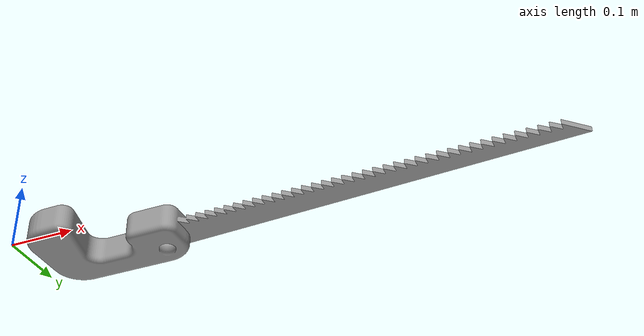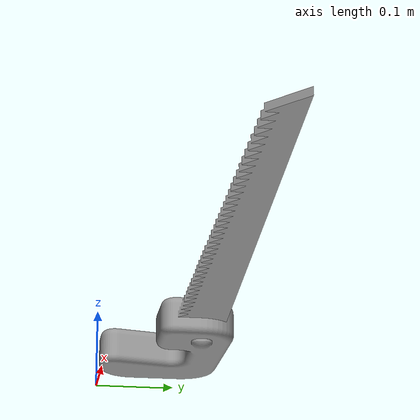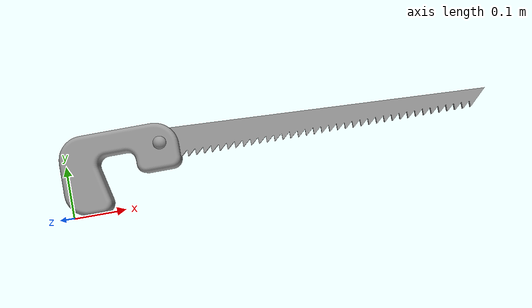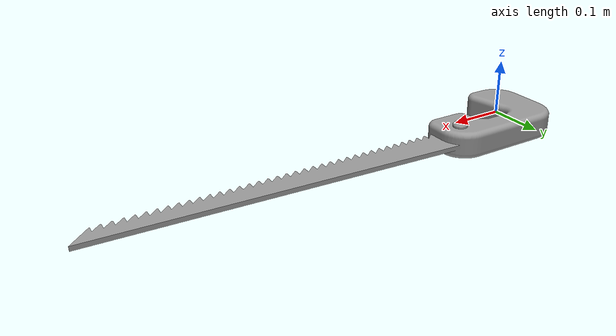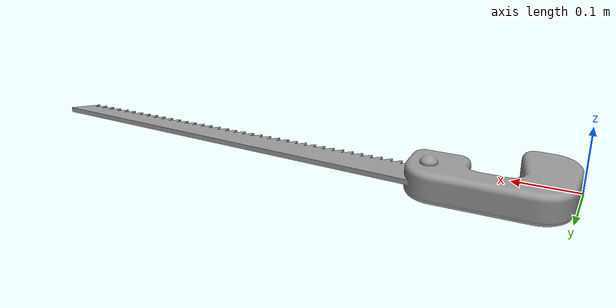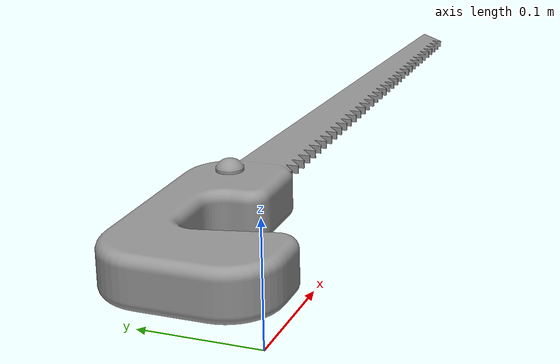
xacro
<?xml version="1.0"?>
<robot name="saw">

    <link name="base_link">
      <visual>
        <origin rpy="0 0 0" xyz="0 0 0"/>
        <geometry>
          <mesh filename="package://aerial_robot_model/urdf/other_objects/saw.stl" scale="0.0015 0.0015 0.0015"/>
        </geometry>
        <material name="gray">
          <color rgba="0.6 .6 0.6 1"/>
        </material>
      </visual>
    </link>

</robot>
